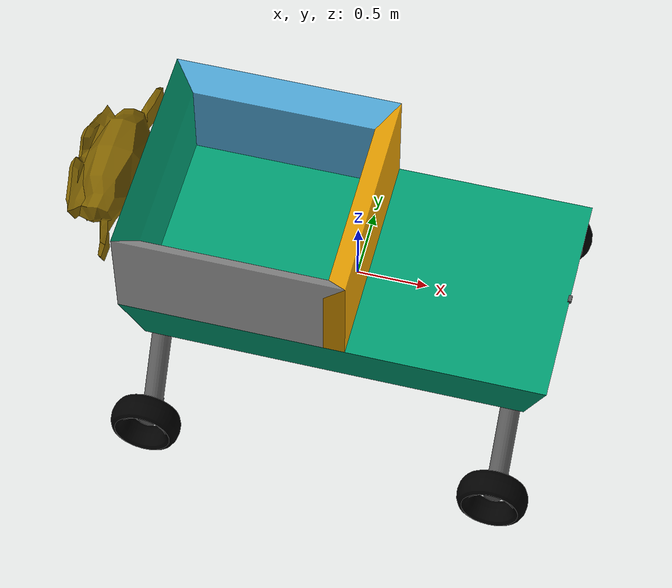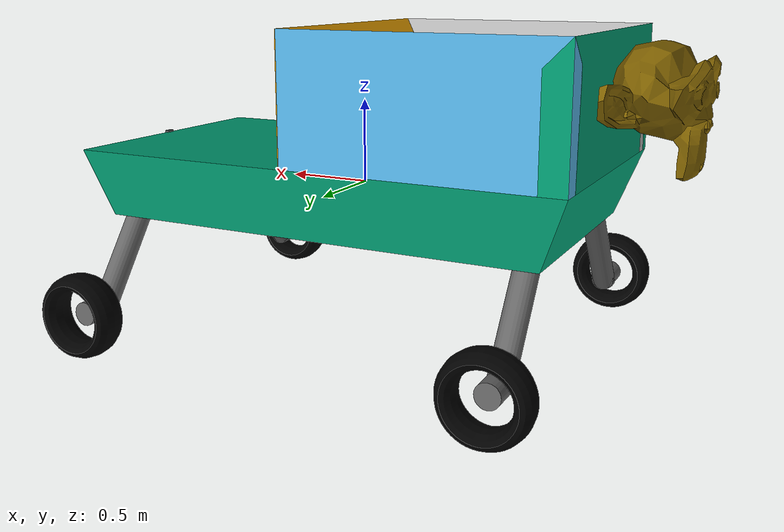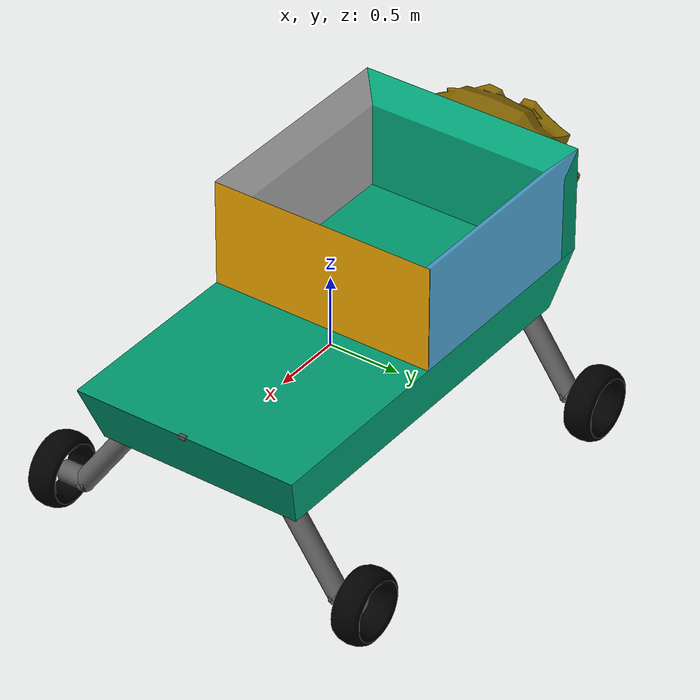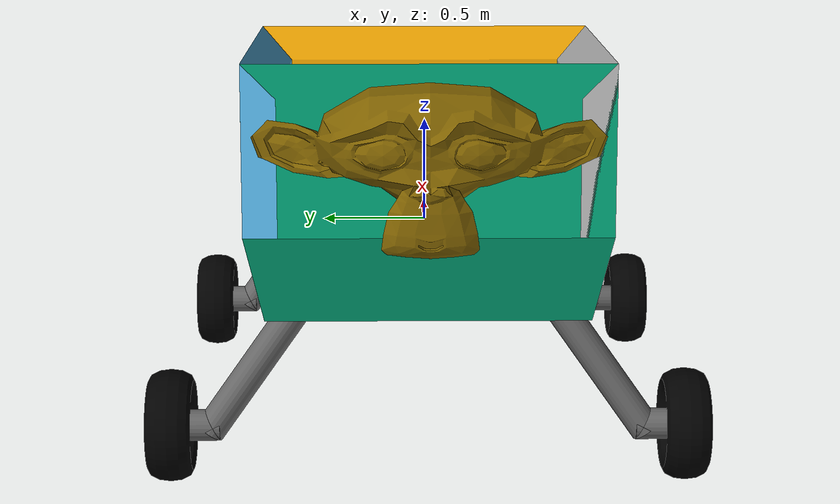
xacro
<?xml version="1.0"?>
<!-- created with Phobos 1.0.1 "Capricious Choutengan" -->
  <robot name="robot" xmlns:xacro="http://wiki.ros.org/xacro">

    <link name="base_link">
    </link>

    <link name="cabeza_mono">
      <inertial>
        <origin xyz="0 0 0" rpy="0 0 0"/>
        <mass value="0.001"/>
        <inertia ixx="0.001" ixy="0" ixz="0" iyy="0.001" iyz="0" izz="0.001"/>
      </inertial>
      <visual name="Suzanne">
        <origin xyz="0 0 0" rpy="0 0 0"/>
        <geometry>
          <mesh filename="file://$(find robot_description)/meshes/dae/Suzanne.dae" scale="0.54857 0.29358 0.35556"/>
        </geometry>
        <material name="Material.016"/>
      </visual>
    </link>

    <link name="chasis">
      <inertial>
        <origin xyz="0 0 0" rpy="0 0 0"/>
        <mass value="50.0"/>
        <inertia ixx="2.11781" ixy="0.18492" ixz="0" iyy="7.11432" iyz="-0.01546" izz="8.96889"/>
      </inertial>
      <visual name="base">
        <origin xyz="0 0 0" rpy="0 0 0"/>
        <geometry>
          <mesh filename="file://$(find robot_description)/meshes/dae/Cube.001.dae" scale="1.5 0.8 0.2"/>
        </geometry>
      </visual>
      <collision name="base_col">
        <origin xyz="0 0 0" rpy="0 0 0"/>
        <geometry>
          <mesh filename="file://$(find robot_description)/meshes/dae/Cube.001.dae" scale="1.5 0.8 0.2"/>
        </geometry>
      </collision>
    </link>

    <link name="eje_dlt_dcha_link">
      <inertial>
        <origin xyz="0 0 0" rpy="0 0 0"/>
        <mass value="1.0"/>
        <inertia ixx="0.00456" ixy="0" ixz="0" iyy="0.00245" iyz="0" izz="0.00456"/>
      </inertial>
      <visual name="eje_dlt_dcha_obj">
        <origin xyz="0 0 0" rpy="1.5708 0 0"/>
        <geometry>
          <cylinder radius="0.07" length="0.2"/>
        </geometry>
        <material name="Material.006"/>
      </visual>
      <collision name="eje_dlt_dcha_col">
        <origin xyz="0 0 0" rpy="1.5708 0 0"/>
        <geometry>
          <cylinder radius="0.07" length="0.2"/>
        </geometry>
      </collision>
    </link>

    <link name="eje_dlt_izq_link">
      <inertial>
        <origin xyz="0 0 0" rpy="0 0 0"/>
        <mass value="1.0"/>
        <inertia ixx="0.00456" ixy="0" ixz="0" iyy="0.00245" iyz="0" izz="0.00456"/>
      </inertial>
      <visual name="eje_dlt_izq_obj">
        <origin xyz="0 0 0" rpy="1.5708 0 0"/>
        <geometry>
          <cylinder radius="0.07" length="0.2"/>
        </geometry>
        <material name="Material.011"/>
      </visual>
      <collision name="eje_dlt_izq_col">
        <origin xyz="0 0 0" rpy="1.5708 0 0"/>
        <geometry>
          <cylinder radius="0.07" length="0.2"/>
        </geometry>
      </collision>
    </link>

    <link name="eje_tr_dcha_link">
      <inertial>
        <origin xyz="0 0 0" rpy="0 0 0"/>
        <mass value="1.0"/>
        <inertia ixx="0.00456" ixy="0" ixz="0" iyy="0.00245" iyz="0" izz="0.00456"/>
      </inertial>
      <visual name="eje_tr_dcha_obj">
        <origin xyz="0 0 0" rpy="1.5708 0 0"/>
        <geometry>
          <cylinder radius="0.07" length="0.2"/>
        </geometry>
        <material name="Material.014"/>
      </visual>
      <collision name="eje_tr_dcha_col">
        <origin xyz="0 0 0" rpy="1.5708 0 0"/>
        <geometry>
          <cylinder radius="0.07" length="0.2"/>
        </geometry>
      </collision>
    </link>

    <link name="eje_tr_izq_link">
      <inertial>
        <origin xyz="0 0 0" rpy="0 0 0"/>
        <mass value="1.0"/>
        <inertia ixx="0.00456" ixy="0" ixz="0" iyy="0.00245" iyz="0" izz="0.00456"/>
      </inertial>
      <visual name="eje_tr_izq_obj">
        <origin xyz="0 0 0" rpy="1.5708 0 0"/>
        <geometry>
          <cylinder radius="0.07" length="0.2"/>
        </geometry>
        <material name="Material.012"/>
      </visual>
      <collision name="eje_tr_izq_col">
        <origin xyz="0 0 0" rpy="1.5708 0 0"/>
        <geometry>
          <cylinder radius="0.07" length="0.2"/>
        </geometry>
      </collision>
    </link>

    <link name="pared_dcha_link">
      <inertial>
        <origin xyz="0 0 0" rpy="0 0 0"/>
        <mass value="3.0"/>
        <inertia ixx="0.14438" ixy="-0.00938" ixz="0.01333" iyy="0.77875" iyz="0" izz="0.64562"/>
      </inertial>
      <visual name="pared_dcha_obj">
        <origin xyz="0 0 0" rpy="0 0 0"/>
        <geometry>
          <mesh filename="file://$(find robot_description)/meshes/dae/Cube.dae" scale="0.075 0.8 0.3"/>
        </geometry>
      </visual>
      <collision name="pared_dcha_col">
        <origin xyz="0 0 0" rpy="0 0 0"/>
        <geometry>
          <mesh filename="file://$(find robot_description)/meshes/dae/Cube.035.dae" scale="1.0 1.0 1.0"/>
        </geometry>
      </collision>
    </link>

    <link name="pared_dlt_link">
      <inertial>
        <origin xyz="0 0 0" rpy="0 0 0"/>
        <mass value="3.0"/>
        <inertia ixx="0.76625" ixy="0.00087" ixz="0" iyy="0.13188" iyz="-0.01067" izz="0.64562"/>
      </inertial>
      <visual name="pared_dlt_obj">
        <origin xyz="0 0 0" rpy="0 0 0"/>
        <geometry>
          <mesh filename="file://$(find robot_description)/meshes/dae/Cube.003.dae" scale="0.075 0.8 0.3"/>
        </geometry>
      </visual>
      <collision name="pared_dlt_col">
        <origin xyz="0 0 0" rpy="0 0 0"/>
        <geometry>
          <mesh filename="file://$(find robot_description)/meshes/dae/Cube.034.dae" scale="1.0 1.0 1.0"/>
        </geometry>
      </collision>
    </link>

    <link name="pared_izq_link">
      <inertial>
        <origin xyz="0 0 0" rpy="0 0 0"/>
        <mass value="3.0"/>
        <inertia ixx="0.13188" ixy="-0.00088" ixz="0.01067" iyy="0.76625" iyz="0" izz="0.64562"/>
      </inertial>
      <visual name="pared_izq_obj">
        <origin xyz="0 0 0" rpy="0 0 0"/>
        <geometry>
          <mesh filename="file://$(find robot_description)/meshes/dae/Cube.004.dae" scale="0.075 0.8 0.3"/>
        </geometry>
      </visual>
      <collision name="pared_izq_col">
        <origin xyz="0 0 0" rpy="0 0 0"/>
        <geometry>
          <mesh filename="file://$(find robot_description)/meshes/dae/Cube.033.dae" scale="1.0 1.0 1.0"/>
        </geometry>
      </collision>
    </link>

    <link name="pared_tr_link">
      <inertial>
        <origin xyz="0 0 0" rpy="0 0 0"/>
        <mass value="3.0"/>
        <inertia ixx="0.77875" ixy="0.00938" ixz="0" iyy="0.14438" iyz="-0.01333" izz="0.64562"/>
      </inertial>
      <visual name="pared_tr_obj">
        <origin xyz="0 0 0" rpy="0 0 0"/>
        <geometry>
          <mesh filename="file://$(find robot_description)/meshes/dae/Cube.005.dae" scale="0.075 0.8 0.3"/>
        </geometry>
      </visual>
      <collision name="pared_tr_col">
        <origin xyz="0 0 0" rpy="0 0 0"/>
        <geometry>
          <mesh filename="file://$(find robot_description)/meshes/dae/Cube.036.dae" scale="1.0 1.0 1.0"/>
        </geometry>
      </collision>
    </link>

    <link name="rueda_dlt_dcha_link">
      <inertial>
        <origin xyz="0 0 0" rpy="0 0 0"/>
        <mass value="1.0"/>
        <inertia ixx="0.01662" ixy="0" ixz="0" iyy="0.02926" iyz="0" izz="0.01662"/>
      </inertial>
      <visual name="rueda_dlt_dcha_obj">
        <origin xyz="0 0 0" rpy="-3.14159 0 0"/>
        <geometry>
          <mesh filename="file://$(find robot_description)/meshes/dae/Torus.006.dae" scale="0.2 0.2 0.4"/>
        </geometry>
        <material name="Material"/>
      </visual>
      <collision name="rueda_dlt_dcha_col">
        <origin xyz="0 0 0" rpy="-3.14159 0 0"/>
        <geometry>
          <mesh filename="file://$(find robot_description)/meshes/dae/Torus.004.dae" scale="1.0 1.0 1.0"/>
        </geometry>
      </collision>
    </link>

    <link name="rueda_dlt_izq_link">
      <inertial>
        <origin xyz="0 0 0" rpy="0 0 0"/>
        <mass value="1.0"/>
        <inertia ixx="0.01662" ixy="0" ixz="0" iyy="0.02926" iyz="0" izz="0.01662"/>
      </inertial>
      <visual name="rueda_dlt_izq_obj">
        <origin xyz="0 0 0" rpy="-3.14159 0 0"/>
        <geometry>
          <mesh filename="file://$(find robot_description)/meshes/dae/Torus.007.dae" scale="0.2 0.2 0.4"/>
        </geometry>
        <material name="Material.001"/>
      </visual>
      <collision name="rueda_dlt_izq_col">
        <origin xyz="0 0 0" rpy="-3.14159 0 0"/>
        <geometry>
          <mesh filename="file://$(find robot_description)/meshes/dae/Torus.008.dae" scale="1.0 1.0 1.0"/>
        </geometry>
      </collision>
    </link>

    <link name="rueda_tr_dcha_link">
      <inertial>
        <origin xyz="0 0 0" rpy="0 0 0"/>
        <mass value="1.0"/>
        <inertia ixx="0.01662" ixy="0" ixz="0" iyy="0.02926" iyz="0" izz="0.01662"/>
      </inertial>
      <visual name="rueda_tr_dcha_obj">
        <origin xyz="0 0 0" rpy="0 -3.14159 0"/>
        <geometry>
          <mesh filename="file://$(find robot_description)/meshes/dae/Torus.002.dae" scale="0.2 0.2 0.4"/>
        </geometry>
        <material name="Material.005"/>
      </visual>
      <collision name="rueda_tr_dcha_col">
        <origin xyz="0 0 0" rpy="0 -3.14159 0"/>
        <geometry>
          <mesh filename="file://$(find robot_description)/meshes/dae/Torus.010.dae" scale="1.0 1.0 1.0"/>
        </geometry>
      </collision>
    </link>

    <link name="rueda_tr_izq_link">
      <inertial>
        <origin xyz="0 0 0" rpy="0 0 0"/>
        <mass value="1.0"/>
        <inertia ixx="0.01662" ixy="0" ixz="0" iyy="0.02926" iyz="0" izz="0.01662"/>
      </inertial>
      <visual name="rueda_tr_izq_obj">
        <origin xyz="0 0 0" rpy="-3.14159 0 0"/>
        <geometry>
          <mesh filename="file://$(find robot_description)/meshes/dae/Torus.000.dae" scale="0.2 0.2 0.4"/>
        </geometry>
        <material name="Material.004"/>
      </visual>
      <collision name="rueda_tr_izq_col">
        <origin xyz="0 0 0" rpy="-3.14159 0 0"/>
        <geometry>
          <mesh filename="file://$(find robot_description)/meshes/dae/Torus.001.dae" scale="1.0 1.0 1.0"/>
        </geometry>
      </collision>
    </link>

    <link name="susp_dlt_dcha_link">
      <inertial>
        <origin xyz="0 0 0" rpy="0 0 0"/>
        <mass value="2.0"/>
        <inertia ixx="2e-05" ixy="0" ixz="0" iyy="2e-05" iyz="-4e-05" izz="0.00201"/>
      </inertial>
      <visual name="susp_dlt_dcha_obj">
        <origin xyz="0 0 0" rpy="0 0 0"/>
        <geometry>
          <cylinder radius="0.07" length="0.8"/>
        </geometry>
        <material name="Material.009"/>
      </visual>
      <collision name="susp_dlt_dcha_col">
        <origin xyz="0 0 0" rpy="0 0 0"/>
        <geometry>
          <cylinder radius="0.07" length="0.8"/>
        </geometry>
      </collision>
    </link>

    <link name="susp_dlt_izq_link">
      <inertial>
        <origin xyz="0 0 0" rpy="0 0 0"/>
        <mass value="2.0"/>
        <inertia ixx="0.10912" ixy="0" ixz="0" iyy="0.07472" iyz="0.04901" izz="0.0393"/>
      </inertial>
      <visual name="susp_dlt_izq_obj">
        <origin xyz="0 0 0" rpy="0 0 0"/>
        <geometry>
          <cylinder radius="0.07" length="0.8"/>
        </geometry>
        <material name="Material.010"/>
      </visual>
      <collision name="susp_dlt_izq_col">
        <origin xyz="0 0 0" rpy="0 0 0"/>
        <geometry>
          <cylinder radius="0.07" length="0.8"/>
        </geometry>
      </collision>
    </link>

    <link name="susp_tr_dcha_link">
      <inertial>
        <origin xyz="0 0 0" rpy="0 0 0"/>
        <mass value="2.0"/>
        <inertia ixx="0.1091" ixy="0" ixz="0" iyy="0.0747" iyz="-0.04901" izz="0.03927"/>
      </inertial>
      <visual name="susp_tr_dcha_obj">
        <origin xyz="0 0 0" rpy="0 0 0"/>
        <geometry>
          <cylinder radius="0.07" length="0.8"/>
        </geometry>
        <material name="Material.015"/>
      </visual>
      <collision name="susp_tr_dcha_col">
        <origin xyz="0 0 0" rpy="0 0 0"/>
        <geometry>
          <mesh filename="file://$(find robot_description)/meshes/dae/Cylinder.027.dae" scale="1.0 1.0 1.0"/>
        </geometry>
      </collision>
    </link>

    <link name="susp_tr_izq_link">
      <inertial>
        <origin xyz="0 0 0" rpy="0 0 0"/>
        <mass value="2.0"/>
        <inertia ixx="0.10912" ixy="0" ixz="0" iyy="0.07472" iyz="0.04901" izz="0.0393"/>
      </inertial>
      <visual name="susp_tr_izq_obj">
        <origin xyz="0 0 0" rpy="0 0 0"/>
        <geometry>
          <cylinder radius="0.07" length="0.8"/>
        </geometry>
        <material name="Material.013"/>
      </visual>
      <collision name="susp_tr_izq_col">
        <origin xyz="0 0 0" rpy="0 0 0"/>
        <geometry>
          <cylinder radius="0.07" length="0.8"/>
        </geometry>
      </collision>
    </link>

    <joint name="cabeza_mono_joint" type="fixed">
      <origin xyz="-1.75 0 0.55" rpy="0 0 -1.5708"/>
      <parent link="chasis"/>
      <child link="cabeza_mono"/>
    </joint>

    <joint name="chasis_joint" type="fixed">
      <origin xyz="0 0 0" rpy="0 0 0"/>
      <parent link="base_link"/>
      <child link="chasis"/>
    </joint>

    <joint name="eje_dlt_dcha_joint" type="fixed">
      <origin xyz="0 0.05682 0.40641" rpy="-2.52957 0 0"/>
      <parent link="susp_dlt_dcha_link"/>
      <child link="eje_dlt_dcha_link"/>
    </joint>

    <joint name="eje_dlt_izq_joint" type="fixed">
      <origin xyz="0 0.05682 0.40641" rpy="-0.61202 -3.14159 0"/>
      <parent link="susp_dlt_izq_link"/>
      <child link="eje_dlt_izq_link"/>
    </joint>

    <joint name="eje_tr_dcha_joint" type="fixed">
      <origin xyz="0 0.05682 0.40641" rpy="-2.52957 0 0"/>
      <parent link="susp_tr_dcha_link"/>
      <child link="eje_tr_dcha_link"/>
    </joint>

    <joint name="eje_tr_izq_joint" type="fixed">
      <origin xyz="0 0.05682 0.40641" rpy="-0.61202 3.14159 0"/>
      <parent link="susp_tr_izq_link"/>
      <child link="eje_tr_izq_link"/>
    </joint>

    <joint name="pared_dcha_joint" type="fixed">
      <origin xyz="-0.7 -0.725 0.5" rpy="0 0 1.5708"/>
      <parent link="chasis"/>
      <child link="pared_dcha_link"/>
    </joint>

    <joint name="pared_dlt_joint" type="fixed">
      <origin xyz="0.03 0 0.5" rpy="0 0 0"/>
      <parent link="chasis"/>
      <child link="pared_dlt_link"/>
    </joint>

    <joint name="pared_izq_joint" type="fixed">
      <origin xyz="-0.7 0.725 0.5" rpy="0 0 1.5708"/>
      <parent link="chasis"/>
      <child link="pared_izq_link"/>
    </joint>

    <joint name="pared_tr_joint" type="fixed">
      <origin xyz="-1.425 0 0.5" rpy="0 0 0"/>
      <parent link="chasis"/>
      <child link="pared_tr_link"/>
    </joint>

    <joint name="rueda_dlt_dcha_joint" type="continuous">
      <origin xyz="0 -0.12 0" rpy="-1.5708 0 -3.14159"/>
      <parent link="eje_dlt_dcha_link"/>
      <child link="rueda_dlt_dcha_link"/>
      <axis xyz="0 0 1.0"/>
      <limit effort="0" velocity="0"/>
    </joint>

    <joint name="rueda_dlt_izq_joint" type="continuous">
      <origin xyz="0 0.12 0" rpy="-1.5708 0 0"/>
      <parent link="eje_dlt_izq_link"/>
      <child link="rueda_dlt_izq_link"/>
      <axis xyz="0 0 1.0"/>
      <limit effort="0" velocity="0"/>
    </joint>

    <joint name="rueda_tr_dcha_joint" type="continuous">
      <origin xyz="0 -0.12 0" rpy="-1.5708 0 -3.14159 "/>
      <parent link="eje_tr_dcha_link"/>
      <child link="rueda_tr_dcha_link"/>
      <axis xyz="0 0 1.0"/>
      <limit effort="0" velocity="0"/>
    </joint>

    <joint name="rueda_tr_izq_joint" type="continuous">
      <origin xyz="0 0.12 0" rpy="-1.5708 0 0"/>
      <parent link="eje_tr_izq_link"/>
      <child link="rueda_tr_izq_link"/>
      <axis xyz="0 0 1.0"/>
      <limit effort="0" velocity="0"/>
    </joint>

    <joint name="susp_dlt_dcha_joint" type="fixed">
      <origin xyz="1.25 -0.75 -0.4" rpy="2.52957 0 0"/>
      <parent link="chasis"/>
      <child link="susp_dlt_dcha_link"/>
    </joint>

    <joint name="susp_dlt_izq_joint" type="fixed">
      <origin xyz="1.25 0.75 -0.4" rpy="-0.61202 3.14159 0"/>
      <parent link="chasis"/>
      <child link="susp_dlt_izq_link"/>
    </joint>

    <joint name="susp_tr_dcha_joint" type="fixed">
      <origin xyz="-1.25 -0.75 -0.4" rpy="2.52957 0 0"/>
      <parent link="chasis"/>
      <child link="susp_tr_dcha_link"/>
    </joint>

    <joint name="susp_tr_izq_joint" type="fixed">
      <origin xyz="-1.25 0.75 -0.4" rpy="-0.61202 3.14159 0"/>
      <parent link="chasis"/>
      <child link="susp_tr_izq_link"/>
    </joint>

    <!--  Transmission is important to link the joints and the controller (see summit_xl_control/config/summit_xl_control.yaml) -->
    <transmission name="rueda_dlt_dcha_joint_trans">
    <type>transmission_interface/SimpleTransmission</type>
    <joint name="rueda_dlt_dcha_joint">
    <hardwareInterface>hardware_interface/VelocityJointInterface</hardwareInterface>
    </joint>
    <actuator name="rueda_dlt_dcha_joint_motor">
    <mechanicalReduction>1</mechanicalReduction>
    </actuator>
    </transmission>
    <gazebo reference="rueda_dlt_dcha_link">
    <mu1>5</mu1>
    <mu2>5</mu2>
    </gazebo>

    <transmission name="rueda_tr_dcha_joint_trans">
    <type>transmission_interface/SimpleTransmission</type>
    <joint name="rueda_tr_dcha_joint">
    <hardwareInterface>hardware_interface/VelocityJointInterface</hardwareInterface>
    </joint>
    <actuator name="rueda_tr_dcha_joint_motor">
    <mechanicalReduction>1</mechanicalReduction>
    </actuator>
    </transmission>
    <gazebo reference="rueda_tr_dcha_link">
    <mu1>5</mu1>
    <mu2>5</mu2>
    </gazebo>

    <transmission name="rueda_dlt_izq_joint_trans">
    <type>transmission_interface/SimpleTransmission</type>
    <joint name="rueda_dlt_izq_joint">
    <hardwareInterface>hardware_interface/VelocityJointInterface</hardwareInterface>
    </joint>
    <actuator name="rueda_dlt_izq_joint_motor">
    <mechanicalReduction>1</mechanicalReduction>
    </actuator>
    </transmission>
    <gazebo reference="rueda_dlt_izq_link">
    <mu1>5</mu1>
    <mu2>5</mu2>
    </gazebo>

    <transmission name="rueda_tr_izq_joint_trans">
    <type>transmission_interface/SimpleTransmission</type>
    <joint name="rueda_tr_izq_joint">
    <hardwareInterface>hardware_interface/VelocityJointInterface</hardwareInterface>
    </joint>
    <actuator name="rueda_tr_izq_joint_motor">
    <mechanicalReduction>1</mechanicalReduction>
    </actuator>
    </transmission>
    <gazebo reference="rueda_tr_izq_link">
    <mu1>5</mu1>
    <mu2>5</mu2>
    </gazebo>

    <material name="Material">
      <color rgba="0 0 0 1.0"/>
    </material>

    <material name="Material.001">
      <color rgba="0.00082 0.00082 0.00082 1.0"/>
    </material>

    <material name="Material.004">
      <color rgba="0 0 0 1.0"/>
    </material>

    <material name="Material.005">
      <color rgba="0 0 0 1.0"/>
    </material>

    <material name="Material.006">
      <color rgba="0.36 0.36 0.36 1.0"/>
    </material>

    <material name="Material.009">
      <color rgba="0.4 0.4 0.4 1.0"/>
    </material>

    <material name="Material.010">
      <color rgba="0.4 0.4 0.4 1.0"/>
    </material>

    <material name="Material.011">
      <color rgba="0.4 0.4 0.4 1.0"/>
    </material>

    <material name="Material.012">
      <color rgba="0.4 0.4 0.4 1.0"/>
    </material>

    <material name="Material.013">
      <color rgba="0.4 0.4 0.4 1.0"/>
    </material>

    <material name="Material.014">
      <color rgba="0.4 0.4 0.4 1.0"/>
    </material>

    <material name="Material.015">
      <color rgba="0.4 0.4 0.4 1.0"/>
    </material>

    <material name="Material.016">
      <color rgba="0.49693 0.37967 0 1.0"/>
    </material>

    <!-- sensores -->
    <xacro:include filename="$(find robot_description)/urdf/sensors/sensors2.urdf.xacro"/>
    <xacro:arg name="robot_ns" default=""/>
    <xacro:arg name="prefix" default=""/>

    <xacro:sensor_camera node_name="front_camera" node_namespace="$(arg robot_ns)" parent="chasis" frame_prefix="front_camera_" >
      <origin xyz="1.5 0 0.2" rpy="0 0 0"/>
    </xacro:sensor_camera>
    <xacro:sensor_imu ns="$(arg robot_ns)" prefix="$(arg prefix)imu_" parent="chasis">
      <origin xyz="0 0 0" rpy="0 0 0"/>
    </xacro:sensor_imu>

    <!-- Gazebo ros control plugins  -->
    <xacro:arg name="config_controllers" default="$(find robot_description)/config/controllers.yaml"/>
    <xacro:arg name="update_rate" default="100"/>
    <xacro:include filename="$(find robot_description)/urdf/ros2_control.urdf.xacro"/>
    <xacro:ros2_control/>

  </robot>

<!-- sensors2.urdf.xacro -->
<robot xmlns:xacro="http://wiki.ros.org/xacro" name="sensors">
<!--  ######## UTILS ########  -->
<xacro:macro name="solid_cuboid_inertia" params="m w h d">
    <inertia ixx="${(m*(h*h+d*d))/12}" ixy="0" ixz="0" iyy="${(m*(w*w+d*d))/12}" iyz="0" izz="${(m*(w*w+h*h))/12}"/>
</xacro:macro>
<!--  ######### IMU #########  -->
<xacro:macro name="sensor_imu" params="prefix ns:='' topic:='imu/data' parent *origin">
    <joint name="${prefix}_joint" type="fixed">
        <axis xyz="1 0 0"/>
        <!-- origin xyz="0 0 0.2825"/ -->
        <xacro:insert_block name="origin"/>
        <parent link="${parent}"/>
        <child link="${prefix}_link"/>
    </joint>

    <link name="${prefix}_link">
        <inertial>
            <origin xyz="0.0 0 0.01" rpy="0 0 0"/>
            <mass value="0.005"/>
            <xacro:solid_cuboid_inertia m="0.005" w="0.001" h="0.001" d="0.001"/>
        </inertial>
        <visual>
            <origin rpy="0 0 0" xyz="0 0 0"/>
            <geometry>
            <box size="0.001 0.001 0.001"/>
            </geometry>
        </visual>
    </link>
    <gazebo reference="${prefix}_link">
        <gravity>true</gravity>
        <sensor name="${prefix}_imu_sensor" type="imu">
            <always_on>true</always_on>
            <update_rate>100</update_rate>
            <visualize>true</visualize>
            <topic>__default_topic__</topic>
            <plugin filename="libgazebo_ros_imu_sensor.so"
                name="${prefix}_imu_plugin">
            <topicName>${topic}</topicName>
            <bodyName>${prefix}_link</bodyName>
            <updateRateHZ>100.0</updateRateHZ>
            <gaussianNoise>0.0</gaussianNoise>
            <xyzOffset>0 0 0</xyzOffset>
            <rpyOffset>0 0 0</rpyOffset>
            <frameName>${prefix}_link</frameName>
            </plugin>
            <pose>0 0 0 0 0 0</pose>
        </sensor>
    </gazebo>
</xacro:macro>

<!--  ####### CAMERA #######  -->
<xacro:macro name="sensor_camera_generic" params="frame_prefix parent *origin node_name:=camera node_namespace:=${None} topic_prefix:=~/ horizontal_fov:=80 vertical_fov:=60 video_width:=1280 video_height:=720 video_fps:=30">
<!--  node_namespace is used from node_name if not set  -->
    <xacro:if value="${node_namespace == None}">
        <xacro:property name="node_namespace" value="${node_name}"/>
    </xacro:if>
    <joint name="${frame_prefix}camera_base_joint" type="fixed">
        <xacro:insert_block name="origin"/>
        <parent link="${parent}"/>
        <child link="${frame_prefix}camera_base_link"/>
    </joint>
    <link name="${frame_prefix}camera_base_link">
        <visual>
            <origin xyz="0 0 0" rpy="0 0 0"/>
            <geometry>
                <box size="0.025 0.05 0.025"/>
            </geometry>
            <material name="light_grey">
            <color rgba="0.35 0.35 0.35 1"/>
            </material>
        </visual>
            <collision>
                <origin xyz="0.0 0.0 0.0" rpy="0 0 0"/>
                <geometry>
                    <box size="0.025 0.05 0.025"/>
                </geometry>
            </collision>
        <inertial>
            <mass value="0.135"/>
            <origin xyz="0 0 0"/>
            <xacro:solid_cuboid_inertia m="0.135" w="0.033" h="0.175" d="0.03"/>
        </inertial>
    </link>
<!--  Camera -->
    <joint name="${frame_prefix}camera_joint" type="fixed">
        <origin xyz="0.0 -0.06 0.0" rpy="0.0 0.0 0.0"/>
        <parent link="${frame_prefix}camera_base_link"/>
        <child link="${frame_prefix}camera_frame"/>
    </joint>

    <link name="${frame_prefix}camera_frame"/>

    <joint name="${frame_prefix}color_optical_joint" type="fixed">
        <origin xyz="0.0 0 0.0" rpy="${-pi/2} 0.0 ${-pi/2}"/>
        <parent link="${frame_prefix}camera_frame"/>
        <child link="${frame_prefix}camera_optical_frame"/>
    </joint>

    <link name="${frame_prefix}camera_optical_frame"/>

    <gazebo reference="${frame_prefix}camera_frame">
        <sensor name="${frame_prefix}sensor" type="camera">
            <pose>0.0 0.0 0.0 0.0 0.0 0.0</pose>
            <visualize>false</visualize>
            <update_rate>30</update_rate>
            <camera>
                <horizontal_fov>${radians(float(horizontal_fov))}</horizontal_fov>
                <vertical_fov>${radians(float(vertical_fov))}</vertical_fov>
                <image>
                <width>${video_width}</width>
                <height>${video_height}</height>
                <format>R8G8B8</format>
                </image>
                <clip>
                <near>0.10</near>
                <far>100.0</far>
                </clip>
                <noise>
                <type>gaussian</type>
                <mean>0.0</mean>
                <stddev>0.007</stddev>
                </noise>
            </camera>
            <plugin name="${node_name}_camera" filename="libgazebo_ros_camera.so">
                <ros>
                    <namespace>${node_namespace}/${node_name}</namespace>
                    <remapping>right/image_raw:=right/image_raw_color</remapping>
                    <remapping>right/camera_info:=right/camera_info</remapping>
                </ros>
                <camera_name>camera1</camera_name>
                <frame_name>${node_namespace}/${frame_prefix}camera_optical_frame</frame_name>
            </plugin>
        </sensor>
    </gazebo>
</xacro:macro>

    <xacro:macro name="sensor_camera" params="frame_prefix parent *origin node_namespace:=cameras node_name topic_prefix:=~/">
        <xacro:sensor_camera_generic frame_prefix="${frame_prefix}" parent="${parent}" node_namespace="${node_namespace}" node_name="${node_name}" topic_prefix="${topic_prefix}" horizontal_fov="110" vertical_fov="70" video_width="1920" video_height="1080" video_fps="30">
        <xacro:insert_block name="origin"/>
        </xacro:sensor_camera_generic>
    </xacro:macro>
</robot>
